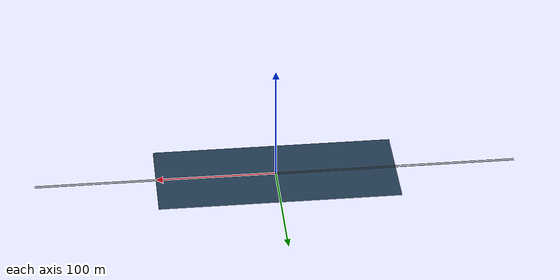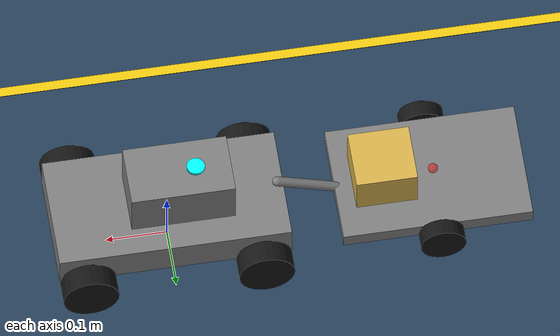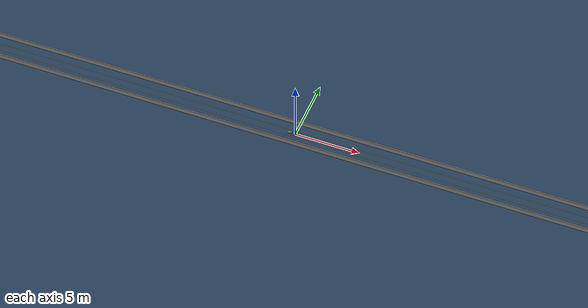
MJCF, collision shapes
<mujoco model="rc_car_trailer_v2">
  <compiler angle="degree" meshdir="assets"/>
  <option timestep="0.001" gravity="0 0 -9.81" integrator="implicitfast"
          density="1.204" viscosity="1.8e-5" wind="0 0 0"/>
  <visual>
    <global offwidth="1920" offheight="1080"/>
    <map znear="0.01" zfar="500.0"/>
  </visual>

  <asset>
    <texture type="skybox" builtin="gradient" rgb1="0.3 0.5 0.7" rgb2="0 0 0" width="512" height="512"/>
    <texture name="grid" type="2d" builtin="checker" rgb1="0.2 0.3 0.4" rgb2="0.1 0.2 0.3" width="512" height="512"/>
    <material name="grid" texture="grid" texrepeat="10 10" texuniform="true"/>
    <material name="car_mat" rgba="0.62 0.64 0.67 1"/>
    <material name="trailer_mat" rgba="0.55 0.57 0.62 1"/>
    <material name="wheel_mat" rgba="0.10 0.10 0.10 1"/>
    <material name="tire_mat" rgba="0.08 0.08 0.08 1"/>
    <material name="payload_mat" rgba="0.85 0.7 0.3 1"/>
    <material name="lane_mat" rgba="0.95 0.8 0.06 1"/>

    <mesh name="car_frame" file="car_frame.stl"/>
    <mesh name="m_fl" file="fl_w.stl"/>
    <mesh name="m_fr" file="fr_w.stl"/>
    <mesh name="m_rl" file="rl_w.stl"/>
    <mesh name="m_rr" file="rr_w.stl"/>
    <mesh name="trailer_frame" file="trailer_frame.stl"/>
  </asset>

  <default>
    <geom condim="6" friction="1.2 0.005 0.0001" contype="1" conaffinity="1"/>
    <default class="visual">
      <geom contype="0" conaffinity="0" mass="0" group="2"/>
    </default>
    <default class="tire">
      <!-- PLANAR_MODE in rc_sway_experiment.py rewrites this friction
           string, so keep it verbatim if you edit it there too. -->
      <geom type="cylinder" material="tire_mat" friction="0.9 0.005 0.0001"
            contype="2" conaffinity="2" priority="1"/>
    </default>
    <default class="spin">
      <joint type="hinge" axis="0 1 0" damping="0.002" armature="1e-5"/>
    </default>
  </default>

  <worldbody>
    <light pos="0 0 4" dir="0 0 -1" directional="true"/>
    <geom name="floor" type="plane" size="100 40 0.1" material="grid" contype="3" conaffinity="3"/>

    <!-- ===== LANE: 0.60 m wide, yellow lines both sides, no collision ===== -->
    <geom name="lane_line_left"  type="box" size="100 0.008 0.0005" pos="0  0.30 0.001" material="lane_mat" contype="0" conaffinity="0"/>
    <geom name="lane_line_right" type="box" size="100 0.008 0.0005" pos="0 -0.30 0.001" material="lane_mat" contype="0" conaffinity="0"/>
    <!-- walls, 0.9 m wide-->
    <geom name="wall_left"  type="box" size="200 0.05 0.2" pos="0  1 0.2" rgba="0.5 0.5 0.5 1"/>
    <geom name="wall_right" type="box" size="200 0.05 0.2" pos="0 -1 0.2" rgba="0.5 0.5 0.5 1"/>
    <!-- ================= RC CAR (CAD chassis + CAD wheels) ================= -->
    <!-- CAR_ROOT_START -->
    <body name="car" pos="0 0 0.0531">
      <freejoint name="car_root"/>
    <!-- CAR_ROOT_END -->
      <inertial pos="0 0 0.02" mass="2.5" diaginertia="0.040 0.075 0.092"/>
      <geom name="car_frame_vis" class="visual" type="mesh" mesh="car_frame" material="car_mat"/>
      <!-- chassis collision (approx CAD envelope) -->
      <geom name="car_chassis_col" type="box" size="0.190 0.095 0.030" pos="0 0 0.025" mass="0" group="3"/>
      <geom name="car_elec_col"    type="box" size="0.085 0.050 0.045" pos="-0.02 0 0.095" mass="0" group="3"/>
      <site name="imu_car" pos="0 0 0.02" size="0.008" rgba="1 0 0 0.5"/>
      <site name="tow_eye" pos="0.1439 0 -0.0076" size="0.008" rgba="0 1 0 0.8"/>

      <site name="lidar_site" pos="-0.0475 0 0.14" size="0.015 0.004" type="cylinder" rgba="0 1 1 1" euler = "0 0 180"/>

      <body name="fl_knuckle" pos="0.1439 0.1095 -0.0076">
        <joint name="fl_susp" type="slide" axis="0 0 1" stiffness="3000" damping="60" range="-0.015 0.015"/>
        <joint name="fl_steer" type="hinge" axis="0 0 1" range="-35 35" damping="0.05"/>
        <geom type="sphere" size="0.010" mass="0.02" contype="0" conaffinity="0" material="car_mat"/>
        <body name="fl_wheel">
          <joint name="fl_hinge" class="spin"/>
          <inertial pos="0 0 0" mass="0.12" diaginertia="8.2e-5 1.24e-4 8.2e-5"/>
          <geom name="fl_tire" class="tire" size="0.0455 0.0225" zaxis="0 1 0"/>
          <geom class="visual" type="mesh" mesh="m_fl" material="wheel_mat"/>
        </body>
      </body>
      <body name="fr_knuckle" pos="0.1439 -0.1095 -0.0076">
        <joint name="fr_susp" type="slide" axis="0 0 1" stiffness="3000" damping="60" range="-0.015 0.015"/>
        <joint name="fr_steer" type="hinge" axis="0 0 1" range="-35 35" damping="0.05"/>
        <geom type="sphere" size="0.010" mass="0.02" contype="0" conaffinity="0" material="car_mat"/>
        <body name="fr_wheel">
          <joint name="fr_hinge" class="spin"/>
          <inertial pos="0 0 0" mass="0.12" diaginertia="8.2e-5 1.24e-4 8.2e-5"/>
          <geom name="fr_tire" class="tire" size="0.0455 0.0225" zaxis="0 1 0"/>
          <geom class="visual" type="mesh" mesh="m_fr" material="wheel_mat"/>
        </body>
      </body>

      <!-- rear (driven), same sprung slide as the front -->
      <body name="rl_wheel" pos="-0.1439 0.1086 -0.0076">
        <joint name="rl_susp" type="slide" axis="0 0 1" stiffness="3000" damping="60" range="-0.015 0.015"/>
        <joint name="rl_hinge" class="spin"/>
        <inertial pos="0 0 0" mass="0.12" diaginertia="8.2e-5 1.24e-4 8.2e-5"/>
        <geom name="rl_tire" class="tire" size="0.0455 0.0225" zaxis="0 1 0"/>
        <geom class="visual" type="mesh" mesh="m_rl" material="wheel_mat"/>
      </body>
      <body name="rr_wheel" pos="-0.1439 -0.1086 -0.0076">
        <joint name="rr_susp" type="slide" axis="0 0 1" stiffness="3000" damping="60" range="-0.015 0.015"/>
        <joint name="rr_hinge" class="spin"/>
        <inertial pos="0 0 0" mass="0.12" diaginertia="8.2e-5 1.24e-4 8.2e-5"/>
        <geom name="rr_tire" class="tire" size="0.0455 0.0225" zaxis="0 1 0"/>
        <geom class="visual" type="mesh" mesh="m_rr" material="wheel_mat"/>
      </body>
      <!-- =============== TRAILER (CAD frame + 74 mm wheels) =============== -->
      <!-- body origin = hitch pivot at the coupler tower, 0.118 m above ground -->
      <!-- TRAILER_START -->
      <body name="trailer" pos="-0.1857 0 0.065">
        <joint name="hitch" type="ball" limited="true" range="0 45" damping="0.005"/>
        <inertial pos="-0.24 0 -0.045" mass="0.8" diaginertia="0.0035 0.012 0.014"/>
        <site name="imu_trailer" pos="-0.25 0 -0.03" size="0.008" rgba="1 0 0 0.5"/>

        <!-- visual: CAD trailer frame (coupler tower, deck, rails, axle tube) -->
        <geom name="trailer_frame_vis" class="visual" type="mesh" mesh="trailer_frame" material="trailer_mat"/>

        <!-- collision primitives -->
        <geom name="trailer_deck_col" type="box" size="0.155 0.100 0.0125"
              pos="-0.243 0 -0.0525" mass="0" group="3"/>
        <geom name="trailer_tongue_col" type="capsule" size="0.008"
              fromto="0.005 0 -0.005  -0.100 0 -0.050" mass="0" contype="0" conaffinity="0"/>

        <geom name="payload" type="box" size="0.050 0.048 0.035"
              pos="-0.1675 0 -0.005" mass="3.5" material="payload_mat"/>

        <!-- 74 mm DIAMETER wheels (r = 0.037) on the CAD axle line;
             not present in the CAD, so modeled as plain cylinders -->
        <body name="tl_wheel" pos="-0.2475 0.113 -0.063">
          <joint name="tl_hinge" class="spin"/>
          <inertial pos="0 0 0" mass="0.05" diaginertia="2.0e-5 3.4e-5 2.0e-5"/>
          <geom name="tl_tire" class="tire" size="0.037 0.013" zaxis="0 1 0" friction="0.9 0.005 0.0001"/>
        </body>
        <body name="tr_wheel" pos="-0.2475 -0.113 -0.063">
          <joint name="tr_hinge" class="spin"/>
          <inertial pos="0 0 0" mass="0.05" diaginertia="2.0e-5 3.4e-5 2.0e-5"/>
          <geom name="tr_tire" class="tire" size="0.037 0.013" zaxis="0 1 0" friction="0.9 0.005 0.0001"/>
        </body>
      </body>
      <!-- TRAILER_END -->
    </body>
    <!-- CAR_END -->
  </worldbody>

  <actuator>
    <velocity name="drive_left"  joint="rl_hinge" kv="2.0" ctrlrange="0 300"/>
    <velocity name="drive_right" joint="rr_hinge" kv="2.0" ctrlrange="0 300"/>
    <velocity name="drive_right_front" joint="fr_hinge" kv="2.0" ctrlrange="0 300"/>
    <velocity name="drive_left_front"  joint="fl_hinge" kv="2.0" ctrlrange="0 300"/>
    <position name="steer_left"  joint="fl_steer" kp="15" kv="0.8" ctrlrange="-0.61 0.61"/>
    <position name="steer_right" joint="fr_steer" kp="15" kv="0.8" ctrlrange="-0.61 0.61"/>
  </actuator>

  <sensor>
    <!-- car IMU -->
    <accelerometer name="car_imu_accel" site="imu_car"/>
    <gyro name="car_imu_gyro" site="imu_car"/>
    <framequat name="car_imu_quat" objtype="site" objname="imu_car"/>
    <!-- trailer IMU -->
    <accelerometer name="trailer_imu_accel" site="imu_trailer"/>
    <gyro name="trailer_imu_gyro" site="imu_trailer"/>
    <framequat name="trailer_imu_quat" objtype="site" objname="imu_trailer"/>
    <!-- trailer angle relative to car (ball joint quaternion) -->
    <ballquat name="hitch_angle" joint="hitch"/>
    <framepos name="trailer_pos" objtype="body" objname="trailer"/>
    <frameyaxis name="trailer_yaxis" objtype="body" objname="trailer"/>
  </sensor>
</mujoco>
